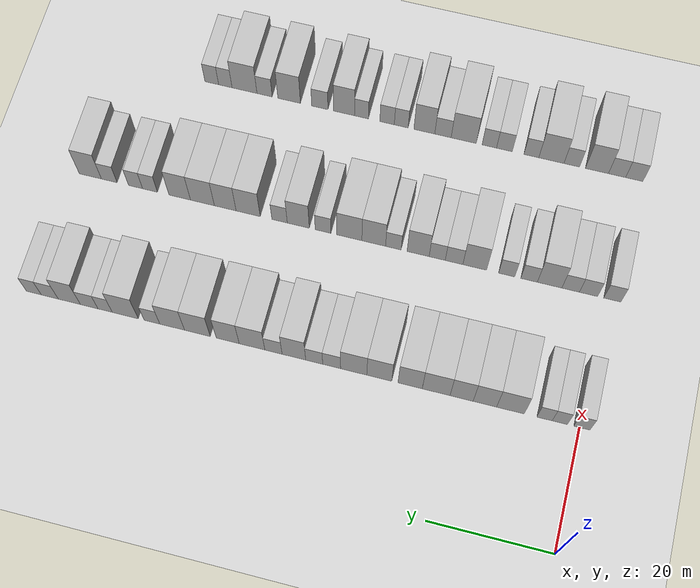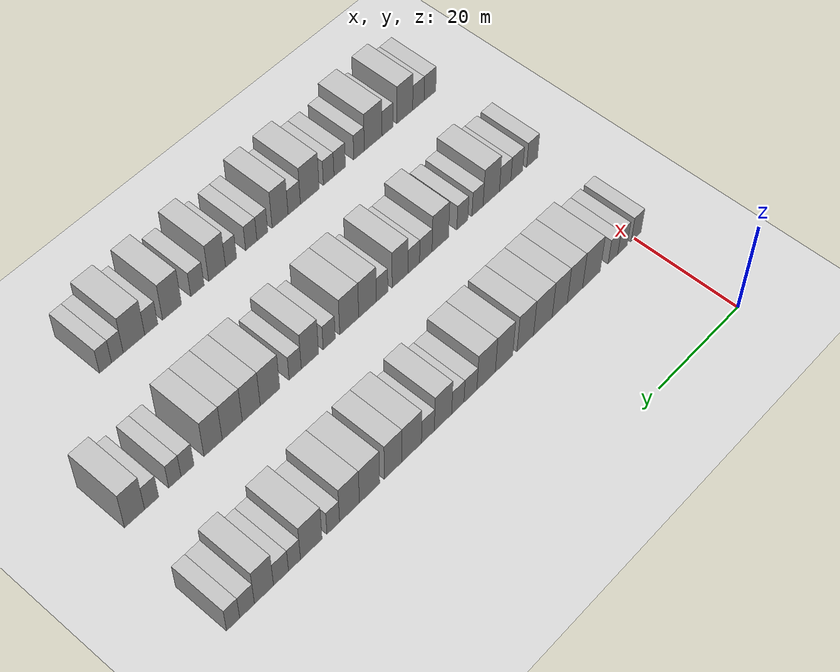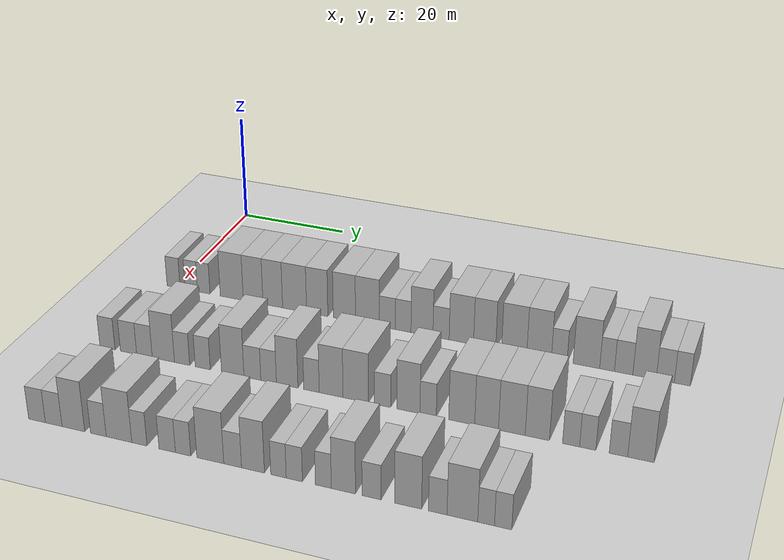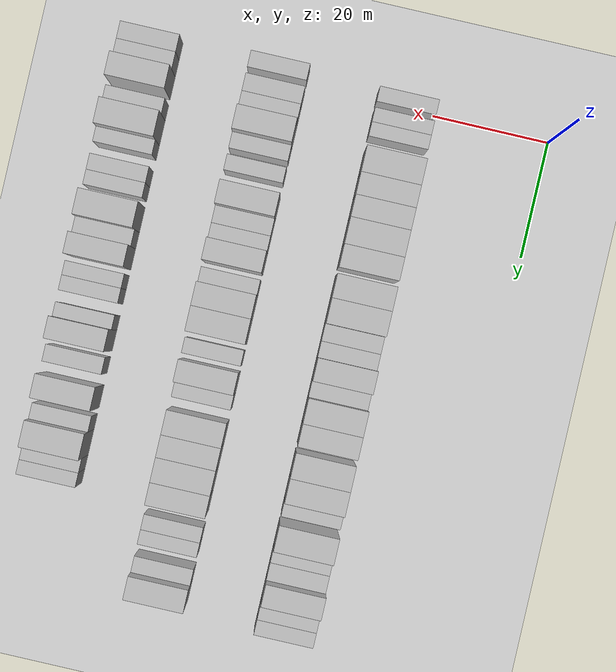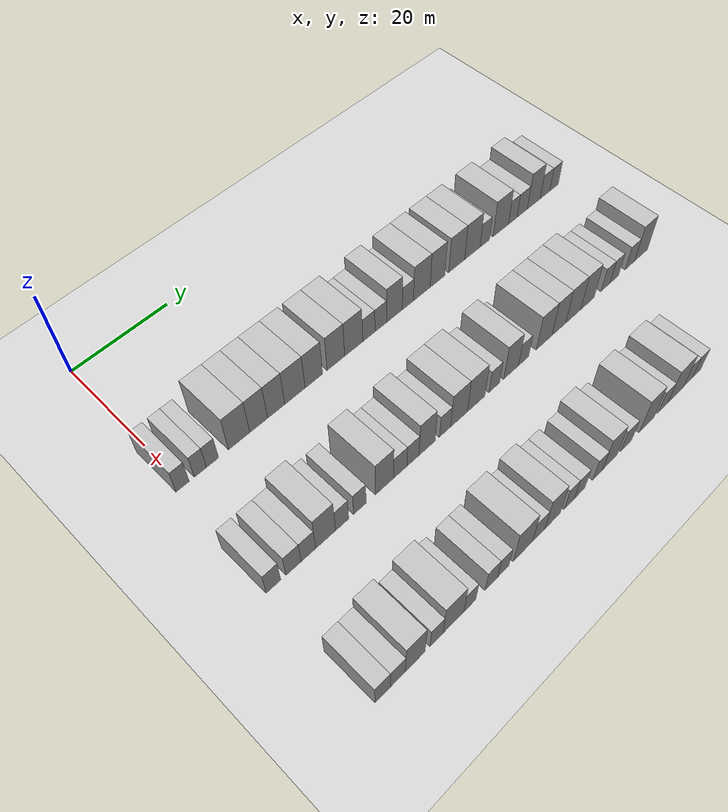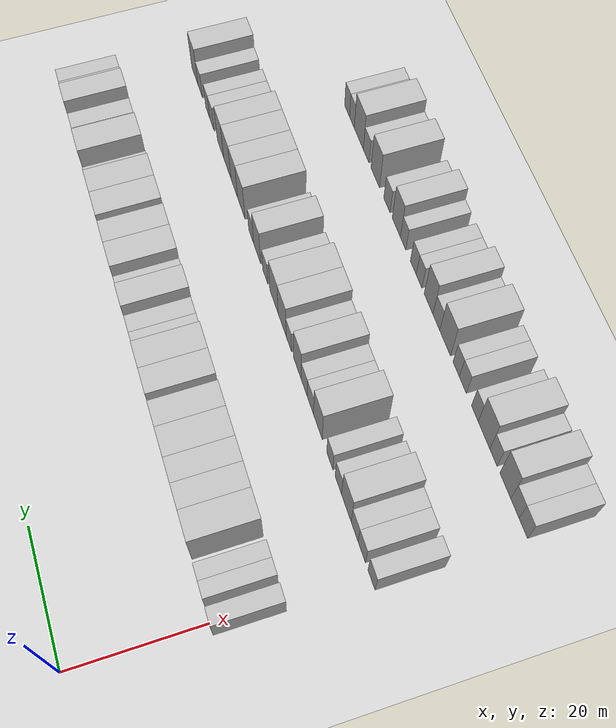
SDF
<sdf version="1.6">
 <world name="default">
  <include><name>ground_plane_1</name><uri>model://HANNAS_ground_plane</uri></include>
  <model name="building_96">
   <static>1</static>
   <pose>25.0000 -0.3151 0 0.000000 0.000000 0.000000</pose>
   <link name="link">
    <pose>0 0 3.00 0 0 0</pose>
    <collision name="collision"><geometry><box><size>10.0000 2.5711 6.0000</size></box></geometry></collision>
    <visual name="visual">
     <cast_shadows>0</cast_shadows>
     <geometry><box><size>10.0000 2.5711 6.0000</size></box></geometry>
     <material>
      <script>
       <uri>model://HANNAS_wall/materials/scripts</uri>
       <uri>model://HANNAS_wall/materials/textures</uri>
       <name>vrc/HANNAS_wall</name>
      </script>
     </material>
    </visual>
   </link>
  </model>
  <model name="building_97">
   <static>1</static>
   <pose>25.0000 3.1766 0 0.000000 0.000000 0.000000</pose>
   <link name="link">
    <pose>0 0 3.00 0 0 0</pose>
    <collision name="collision"><geometry><box><size>10.0000 2.4122 6.0000</size></box></geometry></collision>
    <visual name="visual">
     <cast_shadows>0</cast_shadows>
     <geometry><box><size>10.0000 2.4122 6.0000</size></box></geometry>
     <material>
      <script>
       <uri>model://HANNAS_wall/materials/scripts</uri>
       <uri>model://HANNAS_wall/materials/textures</uri>
       <name>vrc/HANNAS_wall</name>
      </script>
     </material>
    </visual>
   </link>
  </model>
  <model name="building_98">
   <static>1</static>
   <pose>25.0000 5.5967 0 0.000000 0.000000 0.000000</pose>
   <link name="link">
    <pose>0 0 3.00 0 0 0</pose>
    <collision name="collision"><geometry><box><size>10.0000 2.4280 6.0000</size></box></geometry></collision>
    <visual name="visual">
     <cast_shadows>0</cast_shadows>
     <geometry><box><size>10.0000 2.4280 6.0000</size></box></geometry>
     <material>
      <script>
       <uri>model://HANNAS_wall/materials/scripts</uri>
       <uri>model://HANNAS_wall/materials/textures</uri>
       <name>vrc/HANNAS_wall</name>
      </script>
     </material>
    </visual>
   </link>
  </model>
  <model name="building_99">
   <static>1</static>
   <pose>25.0000 11.0182 0 0.000000 0.000000 0.000000</pose>
   <link name="link">
    <pose>0 0 4.50 0 0 0</pose>
    <collision name="collision"><geometry><box><size>10.0000 4.4150 9.0000</size></box></geometry></collision>
    <visual name="visual">
     <cast_shadows>0</cast_shadows>
     <geometry><box><size>10.0000 4.4150 9.0000</size></box></geometry>
     <material>
      <script>
       <uri>model://HANNAS_wall/materials/scripts</uri>
       <uri>model://HANNAS_wall/materials/textures</uri>
       <name>vrc/HANNAS_wall</name>
      </script>
     </material>
    </visual>
   </link>
  </model>
  <model name="building_100">
   <static>1</static>
   <pose>25.0000 15.1032 0 0.000000 0.000000 0.000000</pose>
   <link name="link">
    <pose>0 0 4.50 0 0 0</pose>
    <collision name="collision"><geometry><box><size>10.0000 3.7549 9.0000</size></box></geometry></collision>
    <visual name="visual">
     <cast_shadows>0</cast_shadows>
     <geometry><box><size>10.0000 3.7549 9.0000</size></box></geometry>
     <material>
      <script>
       <uri>model://HANNAS_wall/materials/scripts</uri>
       <uri>model://HANNAS_wall/materials/textures</uri>
       <name>vrc/HANNAS_wall</name>
      </script>
     </material>
    </visual>
   </link>
  </model>
  <model name="building_101">
   <static>1</static>
   <pose>25.0000 18.8308 0 0.000000 0.000000 0.000000</pose>
   <link name="link">
    <pose>0 0 4.50 0 0 0</pose>
    <collision name="collision"><geometry><box><size>10.0000 3.7003 9.0000</size></box></geometry></collision>
    <visual name="visual">
     <cast_shadows>0</cast_shadows>
     <geometry><box><size>10.0000 3.7003 9.0000</size></box></geometry>
     <material>
      <script>
       <uri>model://HANNAS_wall/materials/scripts</uri>
       <uri>model://HANNAS_wall/materials/textures</uri>
       <name>vrc/HANNAS_wall</name>
      </script>
     </material>
    </visual>
   </link>
  </model>
  <model name="building_102">
   <static>1</static>
   <pose>25.0000 22.9225 0 0.000000 0.000000 0.000000</pose>
   <link name="link">
    <pose>0 0 4.50 0 0 0</pose>
    <collision name="collision"><geometry><box><size>10.0000 4.4832 9.0000</size></box></geometry></collision>
    <visual name="visual">
     <cast_shadows>0</cast_shadows>
     <geometry><box><size>10.0000 4.4832 9.0000</size></box></geometry>
     <material>
      <script>
       <uri>model://HANNAS_wall/materials/scripts</uri>
       <uri>model://HANNAS_wall/materials/textures</uri>
       <name>vrc/HANNAS_wall</name>
      </script>
     </material>
    </visual>
   </link>
  </model>
  <model name="building_103">
   <static>1</static>
   <pose>25.0000 27.1284 0 0.000000 0.000000 0.000000</pose>
   <link name="link">
    <pose>0 0 4.50 0 0 0</pose>
    <collision name="collision"><geometry><box><size>10.0000 3.9285 9.0000</size></box></geometry></collision>
    <visual name="visual">
     <cast_shadows>0</cast_shadows>
     <geometry><box><size>10.0000 3.9285 9.0000</size></box></geometry>
     <material>
      <script>
       <uri>model://HANNAS_wall/materials/scripts</uri>
       <uri>model://HANNAS_wall/materials/textures</uri>
       <name>vrc/HANNAS_wall</name>
      </script>
     </material>
    </visual>
   </link>
  </model>
  <model name="building_104">
   <static>1</static>
   <pose>25.0000 32.1212 0 0.000000 0.000000 0.000000</pose>
   <link name="link">
    <pose>0 0 4.50 0 0 0</pose>
    <collision name="collision"><geometry><box><size>10.0000 4.0571 9.0000</size></box></geometry></collision>
    <visual name="visual">
     <cast_shadows>0</cast_shadows>
     <geometry><box><size>10.0000 4.0571 9.0000</size></box></geometry>
     <material>
      <script>
       <uri>model://HANNAS_wall/materials/scripts</uri>
       <uri>model://HANNAS_wall/materials/textures</uri>
       <name>vrc/HANNAS_wall</name>
      </script>
     </material>
    </visual>
   </link>
  </model>
  <model name="building_105">
   <static>1</static>
   <pose>25.0000 36.2793 0 0.000000 0.000000 0.000000</pose>
   <link name="link">
    <pose>0 0 4.50 0 0 0</pose>
    <collision name="collision"><geometry><box><size>10.0000 4.2591 9.0000</size></box></geometry></collision>
    <visual name="visual">
     <cast_shadows>0</cast_shadows>
     <geometry><box><size>10.0000 4.2591 9.0000</size></box></geometry>
     <material>
      <script>
       <uri>model://HANNAS_wall/materials/scripts</uri>
       <uri>model://HANNAS_wall/materials/textures</uri>
       <name>vrc/HANNAS_wall</name>
      </script>
     </material>
    </visual>
   </link>
  </model>
  <model name="building_106">
   <static>1</static>
   <pose>25.0000 39.8754 0 0.000000 0.000000 0.000000</pose>
   <link name="link">
    <pose>0 0 3.00 0 0 0</pose>
    <collision name="collision"><geometry><box><size>10.0000 2.9330 6.0000</size></box></geometry></collision>
    <visual name="visual">
     <cast_shadows>0</cast_shadows>
     <geometry><box><size>10.0000 2.9330 6.0000</size></box></geometry>
     <material>
      <script>
       <uri>model://HANNAS_wall/materials/scripts</uri>
       <uri>model://HANNAS_wall/materials/textures</uri>
       <name>vrc/HANNAS_wall</name>
      </script>
     </material>
    </visual>
   </link>
  </model>
  <model name="building_107">
   <static>1</static>
   <pose>25.0000 42.7324 0 0.000000 0.000000 0.000000</pose>
   <link name="link">
    <pose>0 0 3.00 0 0 0</pose>
    <collision name="collision"><geometry><box><size>10.0000 2.7810 6.0000</size></box></geometry></collision>
    <visual name="visual">
     <cast_shadows>0</cast_shadows>
     <geometry><box><size>10.0000 2.7810 6.0000</size></box></geometry>
     <material>
      <script>
       <uri>model://HANNAS_wall/materials/scripts</uri>
       <uri>model://HANNAS_wall/materials/textures</uri>
       <name>vrc/HANNAS_wall</name>
      </script>
     </material>
    </visual>
   </link>
  </model>
  <model name="building_108">
   <static>1</static>
   <pose>25.0000 46.0612 0 0.000000 0.000000 0.000000</pose>
   <link name="link">
    <pose>0 0 4.50 0 0 0</pose>
    <collision name="collision"><geometry><box><size>10.0000 3.8766 9.0000</size></box></geometry></collision>
    <visual name="visual">
     <cast_shadows>0</cast_shadows>
     <geometry><box><size>10.0000 3.8766 9.0000</size></box></geometry>
     <material>
      <script>
       <uri>model://HANNAS_wall/materials/scripts</uri>
       <uri>model://HANNAS_wall/materials/textures</uri>
       <name>vrc/HANNAS_wall</name>
      </script>
     </material>
    </visual>
   </link>
  </model>
  <model name="building_109">
   <static>1</static>
   <pose>25.0000 49.4147 0 0.000000 0.000000 0.000000</pose>
   <link name="link">
    <pose>0 0 3.00 0 0 0</pose>
    <collision name="collision"><geometry><box><size>10.0000 2.8305 6.0000</size></box></geometry></collision>
    <visual name="visual">
     <cast_shadows>0</cast_shadows>
     <geometry><box><size>10.0000 2.8305 6.0000</size></box></geometry>
     <material>
      <script>
       <uri>model://HANNAS_wall/materials/scripts</uri>
       <uri>model://HANNAS_wall/materials/textures</uri>
       <name>vrc/HANNAS_wall</name>
      </script>
     </material>
    </visual>
   </link>
  </model>
  <model name="building_110">
   <static>1</static>
   <pose>25.0000 52.9545 0 0.000000 0.000000 0.000000</pose>
   <link name="link">
    <pose>0 0 4.50 0 0 0</pose>
    <collision name="collision"><geometry><box><size>10.0000 4.2490 9.0000</size></box></geometry></collision>
    <visual name="visual">
     <cast_shadows>0</cast_shadows>
     <geometry><box><size>10.0000 4.2490 9.0000</size></box></geometry>
     <material>
      <script>
       <uri>model://HANNAS_wall/materials/scripts</uri>
       <uri>model://HANNAS_wall/materials/textures</uri>
       <name>vrc/HANNAS_wall</name>
      </script>
     </material>
    </visual>
   </link>
  </model>
  <model name="building_111">
   <static>1</static>
   <pose>25.0000 56.9843 0 0.000000 0.000000 0.000000</pose>
   <link name="link">
    <pose>0 0 4.50 0 0 0</pose>
    <collision name="collision"><geometry><box><size>10.0000 3.8107 9.0000</size></box></geometry></collision>
    <visual name="visual">
     <cast_shadows>0</cast_shadows>
     <geometry><box><size>10.0000 3.8107 9.0000</size></box></geometry>
     <material>
      <script>
       <uri>model://HANNAS_wall/materials/scripts</uri>
       <uri>model://HANNAS_wall/materials/textures</uri>
       <name>vrc/HANNAS_wall</name>
      </script>
     </material>
    </visual>
   </link>
  </model>
  <model name="building_112">
   <static>1</static>
   <pose>25.0000 62.0280 0 0.000000 0.000000 0.000000</pose>
   <link name="link">
    <pose>0 0 4.50 0 0 0</pose>
    <collision name="collision"><geometry><box><size>10.0000 4.2765 9.0000</size></box></geometry></collision>
    <visual name="visual">
     <cast_shadows>0</cast_shadows>
     <geometry><box><size>10.0000 4.2765 9.0000</size></box></geometry>
     <material>
      <script>
       <uri>model://HANNAS_wall/materials/scripts</uri>
       <uri>model://HANNAS_wall/materials/textures</uri>
       <name>vrc/HANNAS_wall</name>
      </script>
     </material>
    </visual>
   </link>
  </model>
  <model name="building_113">
   <static>1</static>
   <pose>25.0000 66.2353 0 0.000000 0.000000 0.000000</pose>
   <link name="link">
    <pose>0 0 4.50 0 0 0</pose>
    <collision name="collision"><geometry><box><size>10.0000 4.1381 9.0000</size></box></geometry></collision>
    <visual name="visual">
     <cast_shadows>0</cast_shadows>
     <geometry><box><size>10.0000 4.1381 9.0000</size></box></geometry>
     <material>
      <script>
       <uri>model://HANNAS_wall/materials/scripts</uri>
       <uri>model://HANNAS_wall/materials/textures</uri>
       <name>vrc/HANNAS_wall</name>
      </script>
     </material>
    </visual>
   </link>
  </model>
  <model name="building_114">
   <static>1</static>
   <pose>25.0000 69.6113 0 0.000000 0.000000 0.000000</pose>
   <link name="link">
    <pose>0 0 3.00 0 0 0</pose>
    <collision name="collision"><geometry><box><size>10.0000 2.6140 6.0000</size></box></geometry></collision>
    <visual name="visual">
     <cast_shadows>0</cast_shadows>
     <geometry><box><size>10.0000 2.6140 6.0000</size></box></geometry>
     <material>
      <script>
       <uri>model://HANNAS_wall/materials/scripts</uri>
       <uri>model://HANNAS_wall/materials/textures</uri>
       <name>vrc/HANNAS_wall</name>
      </script>
     </material>
    </visual>
   </link>
  </model>
  <model name="building_115">
   <static>1</static>
   <pose>25.0000 74.1057 0 0.000000 0.000000 0.000000</pose>
   <link name="link">
    <pose>0 0 4.50 0 0 0</pose>
    <collision name="collision"><geometry><box><size>10.0000 4.3750 9.0000</size></box></geometry></collision>
    <visual name="visual">
     <cast_shadows>0</cast_shadows>
     <geometry><box><size>10.0000 4.3750 9.0000</size></box></geometry>
     <material>
      <script>
       <uri>model://HANNAS_wall/materials/scripts</uri>
       <uri>model://HANNAS_wall/materials/textures</uri>
       <name>vrc/HANNAS_wall</name>
      </script>
     </material>
    </visual>
   </link>
  </model>
  <model name="building_116">
   <static>1</static>
   <pose>25.0000 77.4984 0 0.000000 0.000000 0.000000</pose>
   <link name="link">
    <pose>0 0 3.00 0 0 0</pose>
    <collision name="collision"><geometry><box><size>10.0000 2.4104 6.0000</size></box></geometry></collision>
    <visual name="visual">
     <cast_shadows>0</cast_shadows>
     <geometry><box><size>10.0000 2.4104 6.0000</size></box></geometry>
     <material>
      <script>
       <uri>model://HANNAS_wall/materials/scripts</uri>
       <uri>model://HANNAS_wall/materials/textures</uri>
       <name>vrc/HANNAS_wall</name>
      </script>
     </material>
    </visual>
   </link>
  </model>
  <model name="building_117">
   <static>1</static>
   <pose>25.0000 80.1936 0 0.000000 0.000000 0.000000</pose>
   <link name="link">
    <pose>0 0 3.00 0 0 0</pose>
    <collision name="collision"><geometry><box><size>10.0000 2.9798 6.0000</size></box></geometry></collision>
    <visual name="visual">
     <cast_shadows>0</cast_shadows>
     <geometry><box><size>10.0000 2.9798 6.0000</size></box></geometry>
     <material>
      <script>
       <uri>model://HANNAS_wall/materials/scripts</uri>
       <uri>model://HANNAS_wall/materials/textures</uri>
       <name>vrc/HANNAS_wall</name>
      </script>
     </material>
    </visual>
   </link>
  </model>
  <model name="building_118">
   <static>1</static>
   <pose>25.0000 83.5628 0 0.000000 0.000000 0.000000</pose>
   <link name="link">
    <pose>0 0 4.50 0 0 0</pose>
    <collision name="collision"><geometry><box><size>10.0000 3.7585 9.0000</size></box></geometry></collision>
    <visual name="visual">
     <cast_shadows>0</cast_shadows>
     <geometry><box><size>10.0000 3.7585 9.0000</size></box></geometry>
     <material>
      <script>
       <uri>model://HANNAS_wall/materials/scripts</uri>
       <uri>model://HANNAS_wall/materials/textures</uri>
       <name>vrc/HANNAS_wall</name>
      </script>
     </material>
    </visual>
   </link>
  </model>
  <model name="building_119">
   <static>1</static>
   <pose>25.0000 86.8793 0 0.000000 0.000000 0.000000</pose>
   <link name="link">
    <pose>0 0 3.00 0 0 0</pose>
    <collision name="collision"><geometry><box><size>10.0000 2.8747 6.0000</size></box></geometry></collision>
    <visual name="visual">
     <cast_shadows>0</cast_shadows>
     <geometry><box><size>10.0000 2.8747 6.0000</size></box></geometry>
     <material>
      <script>
       <uri>model://HANNAS_wall/materials/scripts</uri>
       <uri>model://HANNAS_wall/materials/textures</uri>
       <name>vrc/HANNAS_wall</name>
      </script>
     </material>
    </visual>
   </link>
  </model>
  <model name="building_120">
   <static>1</static>
   <pose>25.0000 89.5882 0 0.000000 0.000000 0.000000</pose>
   <link name="link">
    <pose>0 0 3.00 0 0 0</pose>
    <collision name="collision"><geometry><box><size>10.0000 2.5430 6.0000</size></box></geometry></collision>
    <visual name="visual">
     <cast_shadows>0</cast_shadows>
     <geometry><box><size>10.0000 2.5430 6.0000</size></box></geometry>
     <material>
      <script>
       <uri>model://HANNAS_wall/materials/scripts</uri>
       <uri>model://HANNAS_wall/materials/textures</uri>
       <name>vrc/HANNAS_wall</name>
      </script>
     </material>
    </visual>
   </link>
  </model>
  <model name="building_284">
   <static>1</static>
   <pose>47.0000 -1.1816 0 0.000000 0.000000 0.000000</pose>
   <link name="link">
    <pose>0 0 3.00 0 0 0</pose>
    <collision name="collision"><geometry><box><size>10.0000 2.8053 6.0000</size></box></geometry></collision>
    <visual name="visual">
     <cast_shadows>0</cast_shadows>
     <geometry><box><size>10.0000 2.8053 6.0000</size></box></geometry>
     <material>
      <script>
       <uri>model://HANNAS_wall/materials/scripts</uri>
       <uri>model://HANNAS_wall/materials/textures</uri>
       <name>vrc/HANNAS_wall</name>
      </script>
     </material>
    </visual>
   </link>
  </model>
  <model name="building_285">
   <static>1</static>
   <pose>47.0000 2.7196 0 0.000000 0.000000 0.000000</pose>
   <link name="link">
    <pose>0 0 3.00 0 0 0</pose>
    <collision name="collision"><geometry><box><size>10.0000 2.9971 6.0000</size></box></geometry></collision>
    <visual name="visual">
     <cast_shadows>0</cast_shadows>
     <geometry><box><size>10.0000 2.9971 6.0000</size></box></geometry>
     <material>
      <script>
       <uri>model://HANNAS_wall/materials/scripts</uri>
       <uri>model://HANNAS_wall/materials/textures</uri>
       <name>vrc/HANNAS_wall</name>
      </script>
     </material>
    </visual>
   </link>
  </model>
  <model name="building_286">
   <static>1</static>
   <pose>47.0000 5.6546 0 0.000000 0.000000 0.000000</pose>
   <link name="link">
    <pose>0 0 3.00 0 0 0</pose>
    <collision name="collision"><geometry><box><size>10.0000 2.8729 6.0000</size></box></geometry></collision>
    <visual name="visual">
     <cast_shadows>0</cast_shadows>
     <geometry><box><size>10.0000 2.8729 6.0000</size></box></geometry>
     <material>
      <script>
       <uri>model://HANNAS_wall/materials/scripts</uri>
       <uri>model://HANNAS_wall/materials/textures</uri>
       <name>vrc/HANNAS_wall</name>
      </script>
     </material>
    </visual>
   </link>
  </model>
  <model name="building_287">
   <static>1</static>
   <pose>47.0000 9.1138 0 0.000000 0.000000 0.000000</pose>
   <link name="link">
    <pose>0 0 4.50 0 0 0</pose>
    <collision name="collision"><geometry><box><size>10.0000 4.0455 9.0000</size></box></geometry></collision>
    <visual name="visual">
     <cast_shadows>0</cast_shadows>
     <geometry><box><size>10.0000 4.0455 9.0000</size></box></geometry>
     <material>
      <script>
       <uri>model://HANNAS_wall/materials/scripts</uri>
       <uri>model://HANNAS_wall/materials/textures</uri>
       <name>vrc/HANNAS_wall</name>
      </script>
     </material>
    </visual>
   </link>
  </model>
  <model name="building_288">
   <static>1</static>
   <pose>47.0000 12.5057 0 0.000000 0.000000 0.000000</pose>
   <link name="link">
    <pose>0 0 3.00 0 0 0</pose>
    <collision name="collision"><geometry><box><size>10.0000 2.7384 6.0000</size></box></geometry></collision>
    <visual name="visual">
     <cast_shadows>0</cast_shadows>
     <geometry><box><size>10.0000 2.7384 6.0000</size></box></geometry>
     <material>
      <script>
       <uri>model://HANNAS_wall/materials/scripts</uri>
       <uri>model://HANNAS_wall/materials/textures</uri>
       <name>vrc/HANNAS_wall</name>
      </script>
     </material>
    </visual>
   </link>
  </model>
  <model name="building_289">
   <static>1</static>
   <pose>47.0000 16.2146 0 0.000000 0.000000 0.000000</pose>
   <link name="link">
    <pose>0 0 3.00 0 0 0</pose>
    <collision name="collision"><geometry><box><size>10.0000 2.6794 6.0000</size></box></geometry></collision>
    <visual name="visual">
     <cast_shadows>0</cast_shadows>
     <geometry><box><size>10.0000 2.6794 6.0000</size></box></geometry>
     <material>
      <script>
       <uri>model://HANNAS_wall/materials/scripts</uri>
       <uri>model://HANNAS_wall/materials/textures</uri>
       <name>vrc/HANNAS_wall</name>
      </script>
     </material>
    </visual>
   </link>
  </model>
  <model name="building_290">
   <static>1</static>
   <pose>47.0000 21.5307 0 0.000000 0.000000 0.000000</pose>
   <link name="link">
    <pose>0 0 4.50 0 0 0</pose>
    <collision name="collision"><geometry><box><size>10.0000 3.9529 9.0000</size></box></geometry></collision>
    <visual name="visual">
     <cast_shadows>0</cast_shadows>
     <geometry><box><size>10.0000 3.9529 9.0000</size></box></geometry>
     <material>
      <script>
       <uri>model://HANNAS_wall/materials/scripts</uri>
       <uri>model://HANNAS_wall/materials/textures</uri>
       <name>vrc/HANNAS_wall</name>
      </script>
     </material>
    </visual>
   </link>
  </model>
  <model name="building_291">
   <static>1</static>
   <pose>47.0000 24.9826 0 0.000000 0.000000 0.000000</pose>
   <link name="link">
    <pose>0 0 3.00 0 0 0</pose>
    <collision name="collision"><geometry><box><size>10.0000 2.9509 6.0000</size></box></geometry></collision>
    <visual name="visual">
     <cast_shadows>0</cast_shadows>
     <geometry><box><size>10.0000 2.9509 6.0000</size></box></geometry>
     <material>
      <script>
       <uri>model://HANNAS_wall/materials/scripts</uri>
       <uri>model://HANNAS_wall/materials/textures</uri>
       <name>vrc/HANNAS_wall</name>
      </script>
     </material>
    </visual>
   </link>
  </model>
  <model name="building_292">
   <static>1</static>
   <pose>47.0000 27.8058 0 0.000000 0.000000 0.000000</pose>
   <link name="link">
    <pose>0 0 3.00 0 0 0</pose>
    <collision name="collision"><geometry><box><size>10.0000 2.6955 6.0000</size></box></geometry></collision>
    <visual name="visual">
     <cast_shadows>0</cast_shadows>
     <geometry><box><size>10.0000 2.6955 6.0000</size></box></geometry>
     <material>
      <script>
       <uri>model://HANNAS_wall/materials/scripts</uri>
       <uri>model://HANNAS_wall/materials/textures</uri>
       <name>vrc/HANNAS_wall</name>
      </script>
     </material>
    </visual>
   </link>
  </model>
  <model name="building_293">
   <static>1</static>
   <pose>47.0000 31.0034 0 0.000000 0.000000 0.000000</pose>
   <link name="link">
    <pose>0 0 4.50 0 0 0</pose>
    <collision name="collision"><geometry><box><size>10.0000 3.6997 9.0000</size></box></geometry></collision>
    <visual name="visual">
     <cast_shadows>0</cast_shadows>
     <geometry><box><size>10.0000 3.6997 9.0000</size></box></geometry>
     <material>
      <script>
       <uri>model://HANNAS_wall/materials/scripts</uri>
       <uri>model://HANNAS_wall/materials/textures</uri>
       <name>vrc/HANNAS_wall</name>
      </script>
     </material>
    </visual>
   </link>
  </model>
  <model name="building_294">
   <static>1</static>
   <pose>47.0000 35.1653 0 0.000000 0.000000 0.000000</pose>
   <link name="link">
    <pose>0 0 3.00 0 0 0</pose>
    <collision name="collision"><geometry><box><size>10.0000 2.6241 6.0000</size></box></geometry></collision>
    <visual name="visual">
     <cast_shadows>0</cast_shadows>
     <geometry><box><size>10.0000 2.6241 6.0000</size></box></geometry>
     <material>
      <script>
       <uri>model://HANNAS_wall/materials/scripts</uri>
       <uri>model://HANNAS_wall/materials/textures</uri>
       <name>vrc/HANNAS_wall</name>
      </script>
     </material>
    </visual>
   </link>
  </model>
  <model name="building_295">
   <static>1</static>
   <pose>47.0000 38.4798 0 0.000000 0.000000 0.000000</pose>
   <link name="link">
    <pose>0 0 4.50 0 0 0</pose>
    <collision name="collision"><geometry><box><size>10.0000 4.0048 9.0000</size></box></geometry></collision>
    <visual name="visual">
     <cast_shadows>0</cast_shadows>
     <geometry><box><size>10.0000 4.0048 9.0000</size></box></geometry>
     <material>
      <script>
       <uri>model://HANNAS_wall/materials/scripts</uri>
       <uri>model://HANNAS_wall/materials/textures</uri>
       <name>vrc/HANNAS_wall</name>
      </script>
     </material>
    </visual>
   </link>
  </model>
  <model name="building_296">
   <static>1</static>
   <pose>47.0000 42.6045 0 0.000000 0.000000 0.000000</pose>
   <link name="link">
    <pose>0 0 4.50 0 0 0</pose>
    <collision name="collision"><geometry><box><size>10.0000 4.2446 9.0000</size></box></geometry></collision>
    <visual name="visual">
     <cast_shadows>0</cast_shadows>
     <geometry><box><size>10.0000 4.2446 9.0000</size></box></geometry>
     <material>
      <script>
       <uri>model://HANNAS_wall/materials/scripts</uri>
       <uri>model://HANNAS_wall/materials/textures</uri>
       <name>vrc/HANNAS_wall</name>
      </script>
     </material>
    </visual>
   </link>
  </model>
  <model name="building_297">
   <static>1</static>
   <pose>47.0000 47.0649 0 0.000000 0.000000 0.000000</pose>
   <link name="link">
    <pose>0 0 3.00 0 0 0</pose>
    <collision name="collision"><geometry><box><size>10.0000 2.6762 6.0000</size></box></geometry></collision>
    <visual name="visual">
     <cast_shadows>0</cast_shadows>
     <geometry><box><size>10.0000 2.6762 6.0000</size></box></geometry>
     <material>
      <script>
       <uri>model://HANNAS_wall/materials/scripts</uri>
       <uri>model://HANNAS_wall/materials/textures</uri>
       <name>vrc/HANNAS_wall</name>
      </script>
     </material>
    </visual>
   </link>
  </model>
  <model name="building_298">
   <static>1</static>
   <pose>47.0000 51.2866 0 0.000000 0.000000 0.000000</pose>
   <link name="link">
    <pose>0 0 4.50 0 0 0</pose>
    <collision name="collision"><geometry><box><size>10.0000 3.7672 9.0000</size></box></geometry></collision>
    <visual name="visual">
     <cast_shadows>0</cast_shadows>
     <geometry><box><size>10.0000 3.7672 9.0000</size></box></geometry>
     <material>
      <script>
       <uri>model://HANNAS_wall/materials/scripts</uri>
       <uri>model://HANNAS_wall/materials/textures</uri>
       <name>vrc/HANNAS_wall</name>
      </script>
     </material>
    </visual>
   </link>
  </model>
  <model name="building_299">
   <static>1</static>
   <pose>47.0000 54.4894 0 0.000000 0.000000 0.000000</pose>
   <link name="link">
    <pose>0 0 3.00 0 0 0</pose>
    <collision name="collision"><geometry><box><size>10.0000 2.6385 6.0000</size></box></geometry></collision>
    <visual name="visual">
     <cast_shadows>0</cast_shadows>
     <geometry><box><size>10.0000 2.6385 6.0000</size></box></geometry>
     <material>
      <script>
       <uri>model://HANNAS_wall/materials/scripts</uri>
       <uri>model://HANNAS_wall/materials/textures</uri>
       <name>vrc/HANNAS_wall</name>
      </script>
     </material>
    </visual>
   </link>
  </model>
  <model name="building_300">
   <static>1</static>
   <pose>47.0000 59.8786 0 0.000000 0.000000 0.000000</pose>
   <link name="link">
    <pose>0 0 4.50 0 0 0</pose>
    <collision name="collision"><geometry><box><size>10.0000 4.1399 9.0000</size></box></geometry></collision>
    <visual name="visual">
     <cast_shadows>0</cast_shadows>
     <geometry><box><size>10.0000 4.1399 9.0000</size></box></geometry>
     <material>
      <script>
       <uri>model://HANNAS_wall/materials/scripts</uri>
       <uri>model://HANNAS_wall/materials/textures</uri>
       <name>vrc/HANNAS_wall</name>
      </script>
     </material>
    </visual>
   </link>
  </model>
  <model name="building_301">
   <static>1</static>
   <pose>47.0000 63.8234 0 0.000000 0.000000 0.000000</pose>
   <link name="link">
    <pose>0 0 4.50 0 0 0</pose>
    <collision name="collision"><geometry><box><size>10.0000 3.7496 9.0000</size></box></geometry></collision>
    <visual name="visual">
     <cast_shadows>0</cast_shadows>
     <geometry><box><size>10.0000 3.7496 9.0000</size></box></geometry>
     <material>
      <script>
       <uri>model://HANNAS_wall/materials/scripts</uri>
       <uri>model://HANNAS_wall/materials/textures</uri>
       <name>vrc/HANNAS_wall</name>
      </script>
     </material>
    </visual>
   </link>
  </model>
  <model name="building_302">
   <static>1</static>
   <pose>47.0000 67.7748 0 0.000000 0.000000 0.000000</pose>
   <link name="link">
    <pose>0 0 4.50 0 0 0</pose>
    <collision name="collision"><geometry><box><size>10.0000 4.1533 9.0000</size></box></geometry></collision>
    <visual name="visual">
     <cast_shadows>0</cast_shadows>
     <geometry><box><size>10.0000 4.1533 9.0000</size></box></geometry>
     <material>
      <script>
       <uri>model://HANNAS_wall/materials/scripts</uri>
       <uri>model://HANNAS_wall/materials/textures</uri>
       <name>vrc/HANNAS_wall</name>
      </script>
     </material>
    </visual>
   </link>
  </model>
  <model name="building_303">
   <static>1</static>
   <pose>47.0000 71.7252 0 0.000000 0.000000 0.000000</pose>
   <link name="link">
    <pose>0 0 4.50 0 0 0</pose>
    <collision name="collision"><geometry><box><size>10.0000 3.7474 9.0000</size></box></geometry></collision>
    <visual name="visual">
     <cast_shadows>0</cast_shadows>
     <geometry><box><size>10.0000 3.7474 9.0000</size></box></geometry>
     <material>
      <script>
       <uri>model://HANNAS_wall/materials/scripts</uri>
       <uri>model://HANNAS_wall/materials/textures</uri>
       <name>vrc/HANNAS_wall</name>
      </script>
     </material>
    </visual>
   </link>
  </model>
  <model name="building_304">
   <static>1</static>
   <pose>47.0000 76.8948 0 0.000000 0.000000 0.000000</pose>
   <link name="link">
    <pose>0 0 3.00 0 0 0</pose>
    <collision name="collision"><geometry><box><size>10.0000 2.5918 6.0000</size></box></geometry></collision>
    <visual name="visual">
     <cast_shadows>0</cast_shadows>
     <geometry><box><size>10.0000 2.5918 6.0000</size></box></geometry>
     <material>
      <script>
       <uri>model://HANNAS_wall/materials/scripts</uri>
       <uri>model://HANNAS_wall/materials/textures</uri>
       <name>vrc/HANNAS_wall</name>
      </script>
     </material>
    </visual>
   </link>
  </model>
  <model name="building_305">
   <static>1</static>
   <pose>47.0000 79.4187 0 0.000000 0.000000 0.000000</pose>
   <link name="link">
    <pose>0 0 3.00 0 0 0</pose>
    <collision name="collision"><geometry><box><size>10.0000 2.4561 6.0000</size></box></geometry></collision>
    <visual name="visual">
     <cast_shadows>0</cast_shadows>
     <geometry><box><size>10.0000 2.4561 6.0000</size></box></geometry>
     <material>
      <script>
       <uri>model://HANNAS_wall/materials/scripts</uri>
       <uri>model://HANNAS_wall/materials/textures</uri>
       <name>vrc/HANNAS_wall</name>
      </script>
     </material>
    </visual>
   </link>
  </model>
  <model name="building_306">
   <static>1</static>
   <pose>47.0000 84.0228 0 0.000000 0.000000 0.000000</pose>
   <link name="link">
    <pose>0 0 3.00 0 0 0</pose>
    <collision name="collision"><geometry><box><size>10.0000 2.7520 6.0000</size></box></geometry></collision>
    <visual name="visual">
     <cast_shadows>0</cast_shadows>
     <geometry><box><size>10.0000 2.7520 6.0000</size></box></geometry>
     <material>
      <script>
       <uri>model://HANNAS_wall/materials/scripts</uri>
       <uri>model://HANNAS_wall/materials/textures</uri>
       <name>vrc/HANNAS_wall</name>
      </script>
     </material>
    </visual>
   </link>
  </model>
  <model name="building_307">
   <static>1</static>
   <pose>47.0000 87.3504 0 0.000000 0.000000 0.000000</pose>
   <link name="link">
    <pose>0 0 4.50 0 0 0</pose>
    <collision name="collision"><geometry><box><size>10.0000 3.9031 9.0000</size></box></geometry></collision>
    <visual name="visual">
     <cast_shadows>0</cast_shadows>
     <geometry><box><size>10.0000 3.9031 9.0000</size></box></geometry>
     <material>
      <script>
       <uri>model://HANNAS_wall/materials/scripts</uri>
       <uri>model://HANNAS_wall/materials/textures</uri>
       <name>vrc/HANNAS_wall</name>
      </script>
     </material>
    </visual>
   </link>
  </model>
  <model name="building_459">
   <static>1</static>
   <pose>69.0000 -0.9807 0 0.000000 0.000000 0.000000</pose>
   <link name="link">
    <pose>0 0 3.00 0 0 0</pose>
    <collision name="collision"><geometry><box><size>10.0000 2.9327 6.0000</size></box></geometry></collision>
    <visual name="visual">
     <cast_shadows>0</cast_shadows>
     <geometry><box><size>10.0000 2.9327 6.0000</size></box></geometry>
     <material>
      <script>
       <uri>model://HANNAS_wall/materials/scripts</uri>
       <uri>model://HANNAS_wall/materials/textures</uri>
       <name>vrc/HANNAS_wall</name>
      </script>
     </material>
    </visual>
   </link>
  </model>
  <model name="building_460">
   <static>1</static>
   <pose>69.0000 1.9398 0 0.000000 0.000000 0.000000</pose>
   <link name="link">
    <pose>0 0 3.00 0 0 0</pose>
    <collision name="collision"><geometry><box><size>10.0000 2.9083 6.0000</size></box></geometry></collision>
    <visual name="visual">
     <cast_shadows>0</cast_shadows>
     <geometry><box><size>10.0000 2.9083 6.0000</size></box></geometry>
     <material>
      <script>
       <uri>model://HANNAS_wall/materials/scripts</uri>
       <uri>model://HANNAS_wall/materials/textures</uri>
       <name>vrc/HANNAS_wall</name>
      </script>
     </material>
    </visual>
   </link>
  </model>
  <model name="building_461">
   <static>1</static>
   <pose>69.0000 5.3502 0 0.000000 0.000000 0.000000</pose>
   <link name="link">
    <pose>0 0 4.50 0 0 0</pose>
    <collision name="collision"><geometry><box><size>10.0000 3.9125 9.0000</size></box></geometry></collision>
    <visual name="visual">
     <cast_shadows>0</cast_shadows>
     <geometry><box><size>10.0000 3.9125 9.0000</size></box></geometry>
     <material>
      <script>
       <uri>model://HANNAS_wall/materials/scripts</uri>
       <uri>model://HANNAS_wall/materials/textures</uri>
       <name>vrc/HANNAS_wall</name>
      </script>
     </material>
    </visual>
   </link>
  </model>
  <model name="building_462">
   <static>1</static>
   <pose>69.0000 9.6404 0 0.000000 0.000000 0.000000</pose>
   <link name="link">
    <pose>0 0 3.00 0 0 0</pose>
    <collision name="collision"><geometry><box><size>10.0000 2.6678 6.0000</size></box></geometry></collision>
    <visual name="visual">
     <cast_shadows>0</cast_shadows>
     <geometry><box><size>10.0000 2.6678 6.0000</size></box></geometry>
     <material>
      <script>
       <uri>model://HANNAS_wall/materials/scripts</uri>
       <uri>model://HANNAS_wall/materials/textures</uri>
       <name>vrc/HANNAS_wall</name>
      </script>
     </material>
    </visual>
   </link>
  </model>
  <model name="building_463">
   <static>1</static>
   <pose>69.0000 13.1318 0 0.000000 0.000000 0.000000</pose>
   <link name="link">
    <pose>0 0 4.50 0 0 0</pose>
    <collision name="collision"><geometry><box><size>10.0000 4.3152 9.0000</size></box></geometry></collision>
    <visual name="visual">
     <cast_shadows>0</cast_shadows>
     <geometry><box><size>10.0000 4.3152 9.0000</size></box></geometry>
     <material>
      <script>
       <uri>model://HANNAS_wall/materials/scripts</uri>
       <uri>model://HANNAS_wall/materials/textures</uri>
       <name>vrc/HANNAS_wall</name>
      </script>
     </material>
    </visual>
   </link>
  </model>
  <model name="building_464">
   <static>1</static>
   <pose>69.0000 16.5638 0 0.000000 0.000000 0.000000</pose>
   <link name="link">
    <pose>0 0 3.00 0 0 0</pose>
    <collision name="collision"><geometry><box><size>10.0000 2.5488 6.0000</size></box></geometry></collision>
    <visual name="visual">
     <cast_shadows>0</cast_shadows>
     <geometry><box><size>10.0000 2.5488 6.0000</size></box></geometry>
     <material>
      <script>
       <uri>model://HANNAS_wall/materials/scripts</uri>
       <uri>model://HANNAS_wall/materials/textures</uri>
       <name>vrc/HANNAS_wall</name>
      </script>
     </material>
    </visual>
   </link>
  </model>
  <model name="building_465">
   <static>1</static>
   <pose>69.0000 21.1955 0 0.000000 0.000000 0.000000</pose>
   <link name="link">
    <pose>0 0 3.00 0 0 0</pose>
    <collision name="collision"><geometry><box><size>10.0000 2.7145 6.0000</size></box></geometry></collision>
    <visual name="visual">
     <cast_shadows>0</cast_shadows>
     <geometry><box><size>10.0000 2.7145 6.0000</size></box></geometry>
     <material>
      <script>
       <uri>model://HANNAS_wall/materials/scripts</uri>
       <uri>model://HANNAS_wall/materials/textures</uri>
       <name>vrc/HANNAS_wall</name>
      </script>
     </material>
    </visual>
   </link>
  </model>
  <model name="building_466">
   <static>1</static>
   <pose>69.0000 23.8064 0 0.000000 0.000000 0.000000</pose>
   <link name="link">
    <pose>0 0 3.00 0 0 0</pose>
    <collision name="collision"><geometry><box><size>10.0000 2.5071 6.0000</size></box></geometry></collision>
    <visual name="visual">
     <cast_shadows>0</cast_shadows>
     <geometry><box><size>10.0000 2.5071 6.0000</size></box></geometry>
     <material>
      <script>
       <uri>model://HANNAS_wall/materials/scripts</uri>
       <uri>model://HANNAS_wall/materials/textures</uri>
       <name>vrc/HANNAS_wall</name>
      </script>
     </material>
    </visual>
   </link>
  </model>
  <model name="building_467">
   <static>1</static>
   <pose>69.0000 28.2396 0 0.000000 0.000000 0.000000</pose>
   <link name="link">
    <pose>0 0 4.50 0 0 0</pose>
    <collision name="collision"><geometry><box><size>10.0000 4.3593 9.0000</size></box></geometry></collision>
    <visual name="visual">
     <cast_shadows>0</cast_shadows>
     <geometry><box><size>10.0000 4.3593 9.0000</size></box></geometry>
     <material>
      <script>
       <uri>model://HANNAS_wall/materials/scripts</uri>
       <uri>model://HANNAS_wall/materials/textures</uri>
       <name>vrc/HANNAS_wall</name>
      </script>
     </material>
    </visual>
   </link>
  </model>
  <model name="building_468">
   <static>1</static>
   <pose>69.0000 31.8402 0 0.000000 0.000000 0.000000</pose>
   <link name="link">
    <pose>0 0 3.00 0 0 0</pose>
    <collision name="collision"><geometry><box><size>10.0000 2.8421 6.0000</size></box></geometry></collision>
    <visual name="visual">
     <cast_shadows>0</cast_shadows>
     <geometry><box><size>10.0000 2.8421 6.0000</size></box></geometry>
     <material>
      <script>
       <uri>model://HANNAS_wall/materials/scripts</uri>
       <uri>model://HANNAS_wall/materials/textures</uri>
       <name>vrc/HANNAS_wall</name>
      </script>
     </material>
    </visual>
   </link>
  </model>
  <model name="building_469">
   <static>1</static>
   <pose>69.0000 35.0825 0 0.000000 0.000000 0.000000</pose>
   <link name="link">
    <pose>0 0 4.50 0 0 0</pose>
    <collision name="collision"><geometry><box><size>10.0000 3.6423 9.0000</size></box></geometry></collision>
    <visual name="visual">
     <cast_shadows>0</cast_shadows>
     <geometry><box><size>10.0000 3.6423 9.0000</size></box></geometry>
     <material>
      <script>
       <uri>model://HANNAS_wall/materials/scripts</uri>
       <uri>model://HANNAS_wall/materials/textures</uri>
       <name>vrc/HANNAS_wall</name>
      </script>
     </material>
    </visual>
   </link>
  </model>
  <model name="building_470">
   <static>1</static>
   <pose>69.0000 39.1157 0 0.000000 0.000000 0.000000</pose>
   <link name="link">
    <pose>0 0 3.00 0 0 0</pose>
    <collision name="collision"><geometry><box><size>10.0000 2.4242 6.0000</size></box></geometry></collision>
    <visual name="visual">
     <cast_shadows>0</cast_shadows>
     <geometry><box><size>10.0000 2.4242 6.0000</size></box></geometry>
     <material>
      <script>
       <uri>model://HANNAS_wall/materials/scripts</uri>
       <uri>model://HANNAS_wall/materials/textures</uri>
       <name>vrc/HANNAS_wall</name>
      </script>
     </material>
    </visual>
   </link>
  </model>
  <model name="building_471">
   <static>1</static>
   <pose>69.0000 41.5963 0 0.000000 0.000000 0.000000</pose>
   <link name="link">
    <pose>0 0 3.00 0 0 0</pose>
    <collision name="collision"><geometry><box><size>10.0000 2.5370 6.0000</size></box></geometry></collision>
    <visual name="visual">
     <cast_shadows>0</cast_shadows>
     <geometry><box><size>10.0000 2.5370 6.0000</size></box></geometry>
     <material>
      <script>
       <uri>model://HANNAS_wall/materials/scripts</uri>
       <uri>model://HANNAS_wall/materials/textures</uri>
       <name>vrc/HANNAS_wall</name>
      </script>
     </material>
    </visual>
   </link>
  </model>
  <model name="building_472">
   <static>1</static>
   <pose>69.0000 46.0876 0 0.000000 0.000000 0.000000</pose>
   <link name="link">
    <pose>0 0 3.00 0 0 0</pose>
    <collision name="collision"><geometry><box><size>10.0000 2.4456 6.0000</size></box></geometry></collision>
    <visual name="visual">
     <cast_shadows>0</cast_shadows>
     <geometry><box><size>10.0000 2.4456 6.0000</size></box></geometry>
     <material>
      <script>
       <uri>model://HANNAS_wall/materials/scripts</uri>
       <uri>model://HANNAS_wall/materials/textures</uri>
       <name>vrc/HANNAS_wall</name>
      </script>
     </material>
    </visual>
   </link>
  </model>
  <model name="building_473">
   <static>1</static>
   <pose>69.0000 49.1489 0 0.000000 0.000000 0.000000</pose>
   <link name="link">
    <pose>0 0 4.50 0 0 0</pose>
    <collision name="collision"><geometry><box><size>10.0000 3.6771 9.0000</size></box></geometry></collision>
    <visual name="visual">
     <cast_shadows>0</cast_shadows>
     <geometry><box><size>10.0000 3.6771 9.0000</size></box></geometry>
     <material>
      <script>
       <uri>model://HANNAS_wall/materials/scripts</uri>
       <uri>model://HANNAS_wall/materials/textures</uri>
       <name>vrc/HANNAS_wall</name>
      </script>
     </material>
    </visual>
   </link>
  </model>
  <model name="building_474">
   <static>1</static>
   <pose>69.0000 53.4264 0 0.000000 0.000000 0.000000</pose>
   <link name="link">
    <pose>0 0 3.00 0 0 0</pose>
    <collision name="collision"><geometry><box><size>10.0000 2.8778 6.0000</size></box></geometry></collision>
    <visual name="visual">
     <cast_shadows>0</cast_shadows>
     <geometry><box><size>10.0000 2.8778 6.0000</size></box></geometry>
     <material>
      <script>
       <uri>model://HANNAS_wall/materials/scripts</uri>
       <uri>model://HANNAS_wall/materials/textures</uri>
       <name>vrc/HANNAS_wall</name>
      </script>
     </material>
    </visual>
   </link>
  </model>
  <model name="building_475">
   <static>1</static>
   <pose>69.0000 58.8722 0 0.000000 0.000000 0.000000</pose>
   <link name="link">
    <pose>0 0 4.50 0 0 0</pose>
    <collision name="collision"><geometry><box><size>10.0000 4.0138 9.0000</size></box></geometry></collision>
    <visual name="visual">
     <cast_shadows>0</cast_shadows>
     <geometry><box><size>10.0000 4.0138 9.0000</size></box></geometry>
     <material>
      <script>
       <uri>model://HANNAS_wall/materials/scripts</uri>
       <uri>model://HANNAS_wall/materials/textures</uri>
       <name>vrc/HANNAS_wall</name>
      </script>
     </material>
    </visual>
   </link>
  </model>
  <model name="building_476">
   <static>1</static>
   <pose>69.0000 63.2385 0 0.000000 0.000000 0.000000</pose>
   <link name="link">
    <pose>0 0 3.00 0 0 0</pose>
    <collision name="collision"><geometry><box><size>10.0000 2.7188 6.0000</size></box></geometry></collision>
    <visual name="visual">
     <cast_shadows>0</cast_shadows>
     <geometry><box><size>10.0000 2.7188 6.0000</size></box></geometry>
     <material>
      <script>
       <uri>model://HANNAS_wall/materials/scripts</uri>
       <uri>model://HANNAS_wall/materials/textures</uri>
       <name>vrc/HANNAS_wall</name>
      </script>
     </material>
    </visual>
   </link>
  </model>
  <model name="building_477">
   <static>1</static>
   <pose>69.0000 66.8256 0 0.000000 0.000000 0.000000</pose>
   <link name="link">
    <pose>0 0 4.50 0 0 0</pose>
    <collision name="collision"><geometry><box><size>10.0000 4.4555 9.0000</size></box></geometry></collision>
    <visual name="visual">
     <cast_shadows>0</cast_shadows>
     <geometry><box><size>10.0000 4.4555 9.0000</size></box></geometry>
     <material>
      <script>
       <uri>model://HANNAS_wall/materials/scripts</uri>
       <uri>model://HANNAS_wall/materials/textures</uri>
       <name>vrc/HANNAS_wall</name>
      </script>
     </material>
    </visual>
   </link>
  </model>
  <model name="building_478">
   <static>1</static>
   <pose>69.0000 70.2544 0 0.000000 0.000000 0.000000</pose>
   <link name="link">
    <pose>0 0 3.00 0 0 0</pose>
    <collision name="collision"><geometry><box><size>10.0000 2.4021 6.0000</size></box></geometry></collision>
    <visual name="visual">
     <cast_shadows>0</cast_shadows>
     <geometry><box><size>10.0000 2.4021 6.0000</size></box></geometry>
     <material>
      <script>
       <uri>model://HANNAS_wall/materials/scripts</uri>
       <uri>model://HANNAS_wall/materials/textures</uri>
       <name>vrc/HANNAS_wall</name>
      </script>
     </material>
    </visual>
   </link>
  </model>
  <model name="building_479">
   <static>1</static>
   <pose>69.0000 72.6843 0 0.000000 0.000000 0.000000</pose>
   <link name="link">
    <pose>0 0 3.00 0 0 0</pose>
    <collision name="collision"><geometry><box><size>10.0000 2.4577 6.0000</size></box></geometry></collision>
    <visual name="visual">
     <cast_shadows>0</cast_shadows>
     <geometry><box><size>10.0000 2.4577 6.0000</size></box></geometry>
     <material>
      <script>
       <uri>model://HANNAS_wall/materials/scripts</uri>
       <uri>model://HANNAS_wall/materials/textures</uri>
       <name>vrc/HANNAS_wall</name>
      </script>
     </material>
    </visual>
   </link>
  </model>
 </world>
</sdf>
